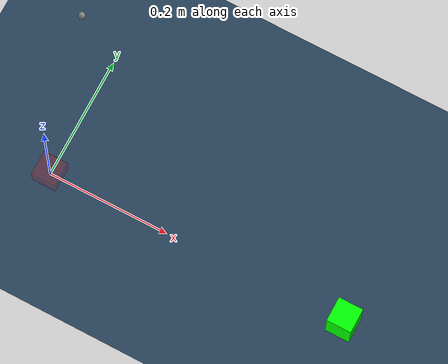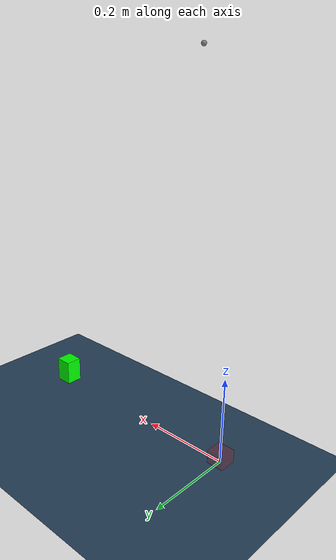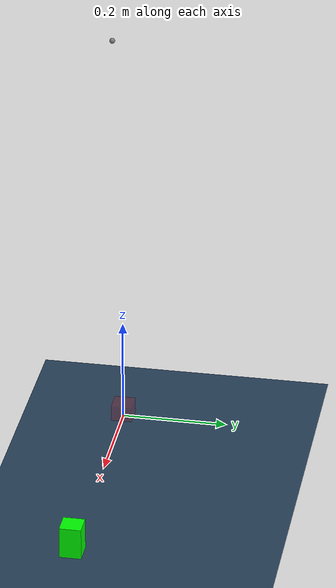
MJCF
<mujoco model="panda scene">
  <compiler angle="radian" />

  <option timestep="0.005" integrator="implicitfast" iterations="5" ls_iterations="8">
    <flag eulerdamp="disable"/>
  </option>

  <size nkey="3"/>

  <visual>
    <global azimuth="120" elevation="-20"/>
    <headlight ambient="0.3 0.3 0.3" diffuse="0.6 0.6 0.6" specular="0 0 0"/>
    <scale forcewidth="0.05" contactwidth="0.075" contactheight="0.025" com="0.05" framelength="0.2" framewidth="0.01"/>
    <rgba haze="0.15 0.25 0.35 1"/>
  </visual>

  <statistic extent="1" center="0.3 0 0.4"/>

  <default>
    <default class="panda">
      <material shininess="0.25"/>
      <joint range="-2.8973 2.8973" armature="0.1" damping="1"/>
      <general ctrlrange="-2.8973 2.8973" forcerange="-100 100" biastype="affine" biasprm="0 -1"/>
      <default class="finger">
        <joint type="slide" range="0 0.04"/>
      </default>
      <default class="visual">
        <geom type="mesh" contype="0" conaffinity="0" group="2"/>
      </default>
      <default class="collision">
        <geom type="mesh" contype="0" conaffinity="0" group="3"/>
        <default class="primitive_collision">
          <geom type="box" solref="0.01" solimp="0.99 0.995 0.01"/>
          <default class="fingertip_pad_collision_1">
            <geom size="0.011 0.0075 0.01"/>
          </default>
          <default class="fingertip_pad_collision_2">
            <geom size="0.011 0.0044 0.0019"/>
          </default>
          <default class="fingertip_pad_collision_3">
            <geom size="0.00875 0.0035 0.01175"/>
          </default>
          <default class="fingertip_pad_collision_4">
            <geom size="0.00875 0.0076 0.00825" conaffinity="3"/>
          </default>
        </default>
      </default>
    </default>
  </default>

  <custom>
    <numeric name="max_contact_points" size="1" data="12"/>
  </custom>

  <asset>
    <texture type="skybox" builtin="gradient" rgb1="0.3 0.5 0.7" rgb2="0 0 0" width="512" height="3072"/>
    <texture type="2d" name="groundplane" builtin="checker" mark="edge" rgb1="0.2 0.3 0.4" rgb2="0.1 0.2 0.3" markrgb="0.8 0.8 0.8" width="300" height="300"/>
    <material name="white" class="panda"/>
    <material name="off_white" class="panda" rgba="0.901961 0.921569 0.929412 1"/>
    <material name="black" class="panda" rgba="0.25 0.25 0.25 1"/>
    <material name="green" class="panda" rgba="0 1 0 1"/>
    <material name="light_blue" class="panda" rgba="0.039216 0.541176 0.780392 1"/>
    <material name="groundplane" texture="groundplane" texuniform="true" texrepeat="5 5" reflectance="0.2"/>
  </asset>

  <worldbody>
    <geom name="floor" size="0 0 0.05" type="plane" material="groundplane"/>
    <light name="top" pos="0 0 2" dir="0 0 -1" mode="trackcom"/>
    <light pos="0 0 1.5" dir="0 0 -1" directional="true"/>
    <body name="link0" childclass="panda">
      <inertial pos="-0.041018 -0.00014 0.049974" quat="0.00630474 0.751245 0.00741774 0.659952" mass="0.629769" diaginertia="0.00430465 0.00387984 0.00313051"/>
      <body name="link1" pos="0 0 0.333">
        <inertial pos="0.003875 0.002081 -0.04762" quat="0.711549 0.00634377 -0.0131124 0.702485" mass="4.97068" diaginertia="0.707137 0.703435 0.00852456"/>
        <joint name="joint1" pos="0 0 0" axis="0 0 1" damping="40"/>
        <body name="link2" quat="0.707107 -0.707107 0 0">
          <inertial pos="-0.003141 -0.02872 0.003495" quat="-0.168175 0.828366 -0.122878 0.520027" mass="0.646926" diaginertia="0.0310326 0.0283001 0.00273425"/>
          <joint name="joint2" pos="0 0 0" axis="0 0 1" range="-1.7628 1.7628" damping="40"/>
          <body name="link3" pos="0 -0.316 0" quat="0.707107 0.707107 0 0">
            <inertial pos="0.027518 0.039252 -0.066502" quat="0.662769 -0.00678331 0.252053 0.705096" mass="3.2286" diaginertia="0.0415014 0.0414793 0.00124635"/>
            <joint name="joint3" pos="0 0 0" axis="0 0 1" damping="40"/>
            <body name="link4" pos="0.0825 0 0" quat="0.707107 0.707107 0 0">
              <inertial pos="-0.05317 0.104419 0.027454" quat="0.65058 0.529822 -0.0962034 0.535518" mass="3.5879" diaginertia="0.0349596 0.0281483 0.0106201"/>
              <joint name="joint4" pos="0 0 0" axis="0 0 1" range="-3.0718 -0.0698" damping="40"/>
              <body name="link5" pos="-0.0825 0.384 0" quat="0.707107 -0.707107 0 0">
                <inertial pos="-0.011953 0.041065 -0.038437" quat="0.987313 -0.0121954 0.0719187 -0.141037" mass="1.22595" diaginertia="0.0367625 0.0288531 0.00803437"/>
                <joint name="joint5" pos="0 0 0" axis="0 0 1" damping="2"/>
                <body name="link6" quat="0.707107 0.707107 0 0">
                  <inertial pos="0.060149 -0.014117 -0.010517" quat="0.101075 0.59332 0.0287227 0.798079" mass="1.66656" diaginertia="0.00584276 0.00431037 0.00159787"/>
                  <joint name="joint6" pos="0 0 0" axis="0 0 1" range="-0.0175 3.7525" damping="2"/>
                  <body name="link7" pos="0.088 0 0" quat="0.707107 0.707107 0 0">
                    <inertial pos="0.010517 -0.004252 0.061597" quat="0.992939 -0.0762041 0.0733595 -0.0537067" mass="0.735522" diaginertia="0.0127345 0.0101055 0.00451803"/>
                    <joint name="joint7" pos="0 0 0" axis="0 0 1" damping="2"/>
                    <body name="hand" pos="0 0 0.107" quat="0.92388 0 0 -0.382683">
                      <inertial pos="-0.01 0 0.03" mass="0.73" diaginertia="0.001 0.0025 0.0017"/>
                      <site name="gripper" pos="0 0 0.1"/>
                      <body name="left_finger" pos="0 0 0.0584">
                        <inertial pos="0 0 0" mass="0.015" diaginertia="2.375e-06 2.375e-06 7.5e-07"/>
                        <joint name="finger_joint1" class="finger" pos="0 0 0" axis="0 1 0" damping="10"/>
                      </body>
                      <body name="right_finger" pos="0 0 0.0584" quat="0 0 0 1">
                        <inertial pos="0 0 0" mass="0.015" diaginertia="2.375e-06 2.375e-06 7.5e-07"/>
                        <joint name="finger_joint2" class="finger" pos="0 0 0" axis="0 1 0" damping="10"/>
                      </body>
                    </body>
                  </body>
                </body>
              </body>
            </body>
          </body>
        </body>
      </body>
    </body>
    <body name="box" pos="0.5 0 0.03">
      <joint type="free" limited="false" actuatorfrclimited="false"/>
      <geom name="box" size="0.02 0.02 0.03" type="box" contype="2" friction="1 0.03 0.003" solref="0.01" rgba="0 1 0 1"/>
    </body>
    <body name="mocap_target" mocap="true">
      <geom size="0.02 0.02 0.03" type="box" contype="0" conaffinity="0" rgba="1 0 0 0.2"/>
    </body>
  </worldbody>

  <equality>
    <joint joint1="finger_joint1" joint2="finger_joint2" polycoef="0 1 0 0 0" solref="0.005" solimp="0.95 0.99"/>
  </equality>

  <actuator>
    <general name="actuator1" class="panda" joint="joint1" gainprm="1000" biasprm="0 -1000 -20"/>
    <general name="actuator2" class="panda" joint="joint2" ctrlrange="-1.7628 1.7628" gainprm="1000" biasprm="0 -1000 -20"/>
    <general name="actuator3" class="panda" joint="joint3" gainprm="750" biasprm="0 -750 -4"/>
    <general name="actuator4" class="panda" joint="joint4" ctrlrange="-3.0718 -0.0698" gainprm="750" biasprm="0 -750 -4"/>
    <general name="actuator5" class="panda" joint="joint5" forcerange="-12 12" gainprm="300" biasprm="0 -300 -2"/>
    <general name="actuator6" class="panda" joint="joint6" ctrlrange="-0.0175 3.7525" forcerange="-12 12" gainprm="300" biasprm="0 -300 -2"/>
    <general name="actuator7" class="panda" joint="joint7" forcerange="-12 12" gainprm="300" biasprm="0 -300 -2"/>
    <general name="actuator8" class="panda" joint="finger_joint1" ctrlrange="0 0.04" forcerange="-200 200" gainprm="350" biasprm="0 -350 -10"/>
  </actuator>

  <keyframe>
    <key name="home" qpos="0 0.3 0 -1.57079 0 2 -0.7853 0.04 0.04 0.7 0 0.03 1 0 0 0" ctrl="0 0.3 0 -1.57079 0 2 -0.7853 0.04"/>
    <key name="pickup" qpos="0.2897 0.50732 -0.140016 -2.176 -0.0310497 2.51592 -0.49251 0.04 0.0399982 0.511684 0.0645413 0.0298665 0.665781 0 0 -0.746147" ctrl="0.2897 0.423 -0.144392 -2.13105 -0.0291743 2.52586 -0.492492 0.04"/>
    <key name="pickup1" qpos="0.2897 0.496673 -0.142836 -2.14746 -0.0295746 2.52378 -0.492496 0.04 0.0399988 0.529553 0.0731702 0.0299388 0.94209 8.84613e-06 -4.97524e-06 -0.335361" ctrl="0.2897 0.458 -0.144392 -2.13105 -0.0291743 2.52586 -0.492492 0.04"/>
  </keyframe>
</mujoco>
